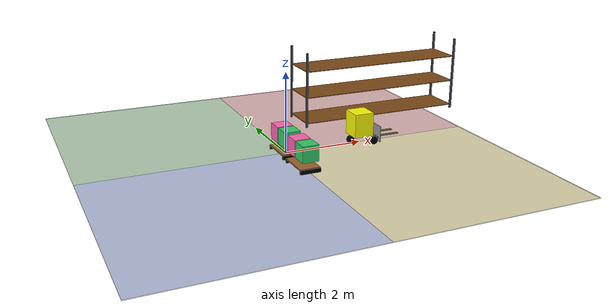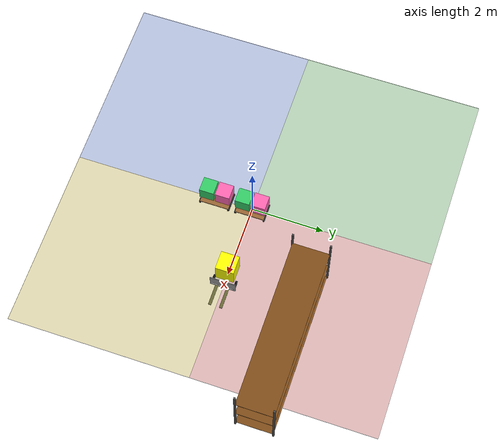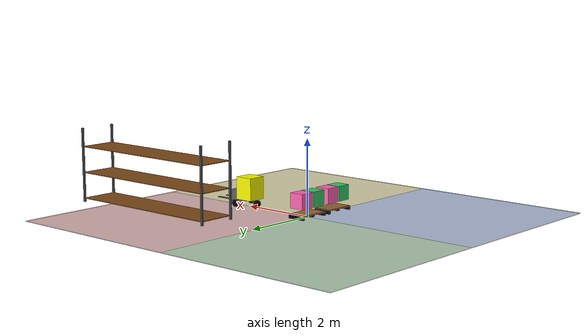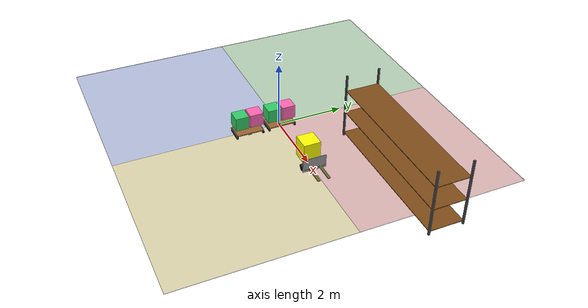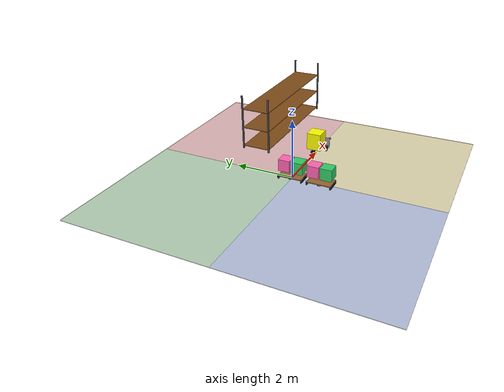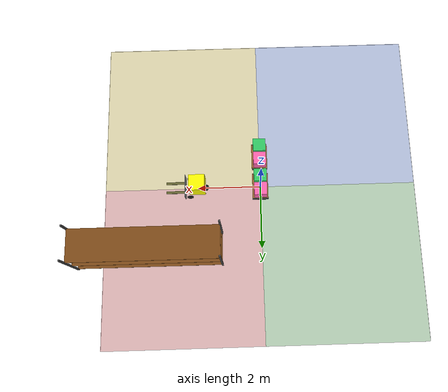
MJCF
<mujoco>
  <option timestep="0.001" density="1.204" viscosity="1.8e-5" integrator="implicit"/>
  <option gravity="0 0 -9.81"/>
  <visual>
    <global elevation="-10"/>
  </visual>
  <default>
    <tendon limited="true" width="0.003" rgba="1 1 1 1"/>
    <geom friction=".2"/>
    <default class="weight">
      <geom rgba=".8 .4 .8 1"/>
      <site rgba=".8 .4 .8 1"/>
    </default>
    <default class="balloon">
      <geom density="0.167" fluidshape="ellipsoid"/>
      <default class="pink">
        <geom rgba="1 .6 .7 1"/>
        <site rgba="1 .6 .7 1"/>
      </default>
      <default class="blue">
        <geom rgba=".3 .7 .9 1"/>
        <site rgba=".3 .7 .9 1"/>
      </default>
      <default class="green">
        <geom rgba=".4 .9 .5 1"/>
        <site rgba=".4 .9 .5 1"/>
      </default>
      <default class="orange">
        <geom rgba="1 .4 0 1"/>
        <site rgba="1 .4 0 1"/>
      </default>
      <default class="black">
        <geom rgba="0 0 0 1"/>
        <site rgba="0 0 0 1"/>
      </default>
      <default class="yellow">
        <geom rgba="1 1 0 1"/>
        <site rgba="1 1 0 1"/>
      </default>

    </default>
  </default>
  <asset>
    <texture name="grid" type="2d" builtin="checker" width="512" height="512" rgb2="0 0 0" rgb1="1 1 1"/>
    <material name="grid" texture="grid" texrepeat="2 2" texuniform="true" reflectance=".6"/>
  </asset>

  <worldbody>
    <geom name="ground" type="plane" size="5 5 .05" pos="0 0 0" rgba="0.88 0.88 0.88 1" friction="1.0"/>
    <geom name="zone_ne" type="box" size="2.5 2.5 0.001" pos="2.5 2.5 0.001" rgba="0.90 0.55 0.55 0.45" contype="0" conaffinity="0"/>
    <geom name="zone_nw" type="box" size="2.5 2.5 0.001" pos="-2.5 2.5 0.001" rgba="0.55 0.78 0.55 0.45" contype="0" conaffinity="0"/>
    <geom name="zone_sw" type="box" size="2.5 2.5 0.001" pos="-2.5 -2.5 0.001" rgba="0.55 0.65 0.90 0.45" contype="0" conaffinity="0"/>
    <geom name="zone_se" type="box" size="2.5 2.5 0.001" pos="2.5 -2.5 0.001" rgba="0.92 0.85 0.50 0.45" contype="0" conaffinity="0"/>
    <!-- ピンクの荷物 -->
    <body name="cargo1" pos="0 0.22 0.465">
      <freejoint/>
      <geom name="cargo_box1" type="box" size="0.2 0.2 0.2"
            rgba="1.0 0.4 0.7 1" mass="1.0" friction="1 0.005 0.0001"/>
    </body>

    <!-- グリーンの荷物 -->
    <body name="cargo2" pos="0 -0.22 0.465">
      <freejoint/>
      <geom name="cargo_box2" type="box" size="0.2 0.2 0.2"
            rgba="0.2 0.8 0.4 1" mass="1.0" friction="1 0.005 0.0001"/>
    </body>

    <body name="pallet1" pos="0 0 0.1">
      <freejoint/>
      <geom name="pallet_geom_top" type="box" size="0.25 0.4 0.015" pos="0 0 0.0" mass="0.1" rgba="0.6 0.4 0.2 1" friction="2 0.1 0.1"/>
      <geom name="support_center" type="box" size="0.2 0.05 0.025" pos="0 0 -0.05" mass="0.1" rgba="0 0 0 1"/>
      <geom name="support_left" type="box" size="0.25 0.025 0.05" pos="0 0.4 -0.05" mass="0.1" rgba="0 0 0 1"/>
      <geom name="support_right" type="box" size="0.25 0.025 0.05" pos="0 -0.4 -0.05" mass="0.01" rgba="0 0 0 1"/>
    </body>

    <!-- ピンクの荷物 -->
    <body name="cargo3" pos="0 -0.78 0.465">
      <freejoint/>
      <geom name="cargo_box3" type="box" size="0.2 0.2 0.2"
            rgba="1.0 0.4 0.7 1" mass="1.0" friction="1 0.005 0.0001"/>
    </body>

    <!-- グリーンの荷物 -->
    <body name="cargo4" pos="0 -1.22 0.465">
      <freejoint/>
      <geom name="cargo_box4" type="box" size="0.2 0.2 0.2"
            rgba="0.2 0.8 0.4 1" mass="1.0" friction="1 0.005 0.0001"/>
    </body>

    <body name="pallet2" pos="0 -1.0 0.1">
      <freejoint/>
      <geom name="pallet2_geom_top" type="box" size="0.25 0.4 0.015" pos="0 0 0.0" mass="0.1" rgba="0.6 0.4 0.2 1" friction="2 0.1 0.1"/>
      <geom name="support_center2" type="box" size="0.2 0.05 0.025" pos="0 0 -0.05" mass="0.1" rgba="0 0 0 1"/>
      <geom name="support_left2" type="box" size="0.25 0.025 0.05" pos="0 0.4 -0.05" mass="0.1" rgba="0 0 0 1"/>
      <geom name="support_right2" type="box" size="0.25 0.025 0.05" pos="0 -0.4 -0.05" mass="0.01" rgba="0 0 0 1"/>
    </body>

    <body name="shelf" pos="3.5 2 0" euler="0 0 90">
      <freejoint/>
      <!-- 支柱（4本） -->
      <geom type="box" size="0.025 0.025 1.0" pos="-0.5 -2.25 1.0" rgba="0.3 0.3 0.3 1"/>
      <geom type="box" size="0.025 0.025 1.0" pos="-0.5  2.25 1.0" rgba="0.3 0.3 0.3 1"/>
      <geom type="box" size="0.025 0.025 1.0" pos=" 0.5 -2.25 1.0" rgba="0.3 0.3 0.3 1"/>
      <geom type="box" size="0.025 0.025 1.0" pos=" 0.5  2.25 1.0" rgba="0.3 0.3 0.3 1"/>

      <!-- 棚板（3段） -->
      <geom type="box" size="0.5 2.25 0.01" pos="0 0 0.1" rgba="0.5 0.3 0.1 1"/>  <!-- 1段目 -->
      <geom type="box" size="0.5 2.25 0.01" pos="0 0 0.8" rgba="0.5 0.3 0.1 1"/>  <!-- 2段目 -->
      <geom type="box" size="0.5 2.25 0.01" pos="0 0 1.5" rgba="0.5 0.3 0.1 1"/>  <!-- 3段目 -->
    </body>

    <!-- 本体（ベース） -->
    <body name="forklift_base" pos="2 0 0.5" euler="0 0 0" childclass="yellow">
      <freejoint/>
      <geom name="base" type="box" size="0.25 0.25 0.3" mass="80.0"/>
      <body name="body_guard" pos="0.4 0 -0.25" euler="0 0 0">
        <geom name="body_guard_frame" type="box" size="0.01 0.35 0.2" rgba="0.6 0.6 0.6 1"/>
      </body>

      <!-- フォークリフト機構 -->
      <body name="lift_arm" pos="0.41 0 -0.35" euler="0 0 0">
        <joint name="lift_joint" type="slide" axis="0 0 1" range="-0.2 0.3" damping="0.1" stiffness="1" />
        <geom name="lift_frame" type="box" size="0.03 0.3 0.01" rgba="0.6 0.6 0.6 1"/>

        <!-- フォーク部分 -->
        <body name="forks" pos="0.3 0 0.0" euler="0 90 0">
          <geom name="left_fork"  type="box" size="0.01 0.04 0.3" pos="0 0.15 0" rgba="0.4 0.4 0.2 1" mass="1.0" friction="3 0.2 0.1"/>
          <geom name="right_fork" type="box" size="0.01 0.04 0.3" pos="0 -0.15 0" rgba="0.4 0.4 0.2 1" mass="1.0" friction="3 0.2 0.1"/>
        </body>
      </body>

      <!-- 前輪 -->
      <body name="left_wheel" pos="0.25 0.3 -0.4" euler="90 0 0" childclass="black">
        <joint name="left_wheel_hinge" type="hinge" axis="0 0 -1" damping="0.1"/>
        <geom name="left_wheel_geom" type="cylinder" size="0.1 0.02" density="800" friction="1.0"/>
      </body>

      <body name="right_wheel" pos="0.25 -0.3 -0.4" euler="90 0 0" childclass="black">
        <joint name="right_wheel_hinge" type="hinge" axis="0 0 -1" damping="0.1"/>
        <geom name="right_wheel_geom" type="cylinder" size="0.1 0.02" density="800" friction="1.0"/>
      </body>

      <!-- 後輪 -->
      <body name="back_castor" pos="-0.25 0 -0.4" childclass="black">
        <joint name="castor_joint" type="ball" damping="0.01"/>
        <geom name="castor" type="sphere" size="0.1" density="500" friction="1.01"/>
      </body>

    </body>
  </worldbody>
  <actuator>
    <!-- 左モーター（初期値5.0で回転） -->
    <motor name="left_motor" joint="left_wheel_hinge" ctrllimited="true" ctrlrange="-10 10"  gear = "1.0"/>

    <!-- 右モーター（初期値5.0で回転） -->
    <motor name="right_motor" joint="right_wheel_hinge" ctrllimited="true" ctrlrange="-10 10"  gear = "1.0"/>

    <motor name="lift_motor" joint="lift_joint" ctrllimited="true" ctrlrange="-0.1 0.5" gear="100.0"/>
  </actuator>
</mujoco>
